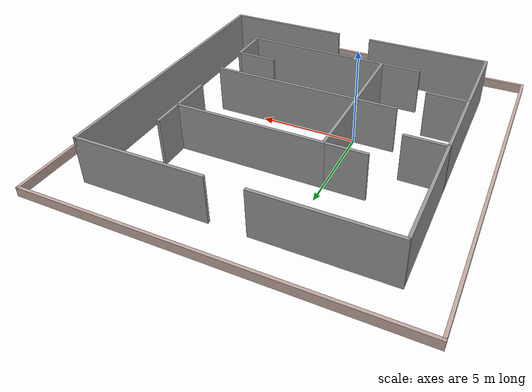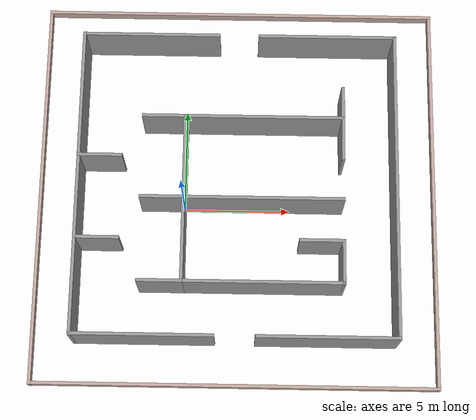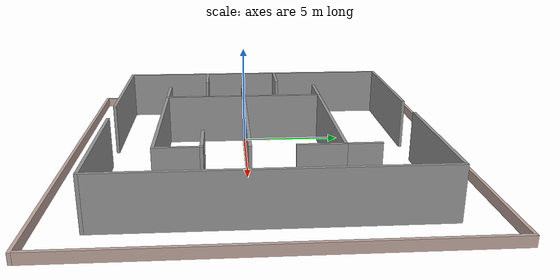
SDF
<?xml version='1.0'?>
<sdf version='1.6'>
  <model name='indoor_env_01'>
    <pose frame=''>2.5 0.825 0 0 -0 0</pose>
    <link name='Wall_0'>
      <collision name='Wall_0_Collision'>
        <geometry>
          <box>
            <size>7.65 0.15 2.5</size>
          </box>
        </geometry>
        <pose frame=''>0 0 1.25 0 -0 0</pose>
      </collision>
      <visual name='Wall_0_Visual'>
        <pose frame=''>0 0 1.25 0 -0 0</pose>
        <geometry>
          <box>
            <size>7.65 0.15 2.5</size>
          </box>
        </geometry>
        <material>
          <script>
            <uri>file://media/materials/scripts/gazebo.material</uri>
            <name>Gazebo/Grey</name>
          </script>
          <ambient>1 1 1 1</ambient>
        </material>
        <meta>
          <layer>0</layer>
        </meta>
      </visual>
      <pose frame=''>1.25 -0.825 0 0 -0 0</pose>
    </link>
    <link name='Wall_10'>
      <collision name='Wall_10_Collision'>
        <geometry>
          <box>
            <size>7.65 0.15 2.5</size>
          </box>
        </geometry>
        <pose frame=''>0 0 1.25 0 -0 0</pose>
      </collision>
      <visual name='Wall_10_Visual'>
        <pose frame=''>0 0 1.25 0 -0 0</pose>
        <geometry>
          <box>
            <size>7.65 0.15 2.5</size>
          </box>
        </geometry>
        <material>
          <script>
            <uri>file://media/materials/scripts/gazebo.material</uri>
            <name>Gazebo/Grey</name>
          </script>
          <ambient>1 1 1 1</ambient>
        </material>
        <meta>
          <layer>0</layer>
        </meta>
      </visual>
      <pose frame=''>1.25 3.175 0 0 -0 0</pose>
    </link>
    <link name='Wall_11'>
      <collision name='Wall_11_Collision'>
        <geometry>
          <box>
            <size>2.15 0.15 2.5</size>
          </box>
        </geometry>
        <pose frame=''>0 0 1.25 0 -0 0</pose>
      </collision>
      <visual name='Wall_11_Visual'>
        <pose frame=''>0 0 1.25 0 -0 0</pose>
        <geometry>
          <box>
            <size>2.15 0.15 2.5</size>
          </box>
        </geometry>
        <material>
          <script>
            <uri>file://media/materials/scripts/gazebo.material</uri>
            <name>Gazebo/Grey</name>
          </script>
          <ambient>1 1 1 1</ambient>
        </material>
        <meta>
          <layer>0</layer>
        </meta>
      </visual>
      <pose frame=''>5 2.175 0 0 -0 -1.5708</pose>
    </link>
    <link name='Wall_14'>
      <collision name='Wall_14_Collision'>
        <geometry>
          <box>
            <size>14.8 0.15 2.5</size>
          </box>
        </geometry>
        <pose frame=''>0 0 1.25 0 -0 0</pose>
      </collision>
      <visual name='Wall_14_Visual'>
        <pose frame=''>0 0 1.25 0 -0 0</pose>
        <geometry>
          <box>
            <size>14.8 0.15 2.5</size>
          </box>
        </geometry>
        <material>
          <script>
            <uri>file://media/materials/scripts/gazebo.material</uri>
            <name>Gazebo/Grey</name>
          </script>
          <ambient>1 1 1 1</ambient>
        </material>
        <meta>
          <layer>0</layer>
        </meta>
      </visual>
      <pose frame=''>7.5 0 0 0 -0 -1.5708</pose>
    </link>
    <link name='Wall_16'>
      <collision name='Wall_16_Collision'>
        <geometry>
          <box>
            <size>1.65 0.15 2.5</size>
          </box>
        </geometry>
        <pose frame=''>0 0 1.25 0 -0 0</pose>
      </collision>
      <visual name='Wall_16_Visual'>
        <pose frame=''>0 0 1.25 0 -0 0</pose>
        <geometry>
          <box>
            <size>1.65 0.15 2.5</size>
          </box>
        </geometry>
        <material>
          <script>
            <uri>file://media/materials/scripts/gazebo.material</uri>
            <name>Gazebo/Grey</name>
          </script>
          <ambient>1 1 1 1</ambient>
        </material>
        <meta>
          <layer>0</layer>
        </meta>
      </visual>
      <pose frame=''>5 3.925 0 0 -0 1.5708</pose>
    </link>
    <link name='Wall_18'>
      <collision name='Wall_18_Collision'>
        <geometry>
          <box>
            <size>6.65 0.15 2.5</size>
          </box>
        </geometry>
        <pose frame=''>0 0 1.25 0 -0 0</pose>
      </collision>
      <visual name='Wall_18_Visual'>
        <pose frame=''>0 0 1.25 0 -0 0</pose>
        <geometry>
          <box>
            <size>6.65 0.15 2.5</size>
          </box>
        </geometry>
        <material>
          <script>
            <uri>file://media/materials/scripts/gazebo.material</uri>
            <name>Gazebo/Grey</name>
          </script>
          <ambient>1 1 1 1</ambient>
        </material>
        <meta>
          <layer>0</layer>
        </meta>
      </visual>
      <pose frame=''>4.25 7.325 0 0 -0 0</pose>
    </link>
    <link name='Wall_2'>
      <collision name='Wall_2_Collision'>
        <geometry>
          <box>
            <size>4.15 0.15 2.5</size>
          </box>
        </geometry>
        <pose frame=''>0 0 1.25 0 -0 0</pose>
      </collision>
      <visual name='Wall_2_Visual'>
        <pose frame=''>0 0 1.25 0 -0 0</pose>
        <geometry>
          <box>
            <size>4.15 0.15 2.5</size>
          </box>
        </geometry>
        <material>
          <script>
            <uri>file://media/materials/scripts/gazebo.material</uri>
            <name>Gazebo/Grey</name>
          </script>
          <ambient>1 1 1 1</ambient>
        </material>
        <meta>
          <layer>0</layer>
        </meta>
      </visual>
      <pose frame=''>-2.5 -2.825 0 0 -0 -1.5708</pose>
    </link>
    <link name='Wall_29'>
      <collision name='Wall_29_Collision'>
        <geometry>
          <box>
            <size>6.65 0.15 2.5</size>
          </box>
        </geometry>
        <pose frame=''>0 0 1.25 0 -0 0</pose>
      </collision>
      <visual name='Wall_29_Visual'>
        <pose frame=''>0 0 1.25 0 -0 0</pose>
        <geometry>
          <box>
            <size>6.65 0.15 2.5</size>
          </box>
        </geometry>
        <material>
          <script>
            <uri>file://media/materials/scripts/gazebo.material</uri>
            <name>Gazebo/Grey</name>
          </script>
          <ambient>1 1 1 1</ambient>
        </material>
        <meta>
          <layer>0</layer>
        </meta>
      </visual>
      <pose frame=''>-4.25 -7.325 0 0 -0 3.14159</pose>
    </link>
    <link name='Wall_31'>
      <collision name='Wall_31_Collision'>
        <geometry>
          <box>
            <size>2.15 0.15 2.5</size>
          </box>
        </geometry>
        <pose frame=''>0 0 1.25 0 -0 0</pose>
      </collision>
      <visual name='Wall_31_Visual'>
        <pose frame=''>0 0 1.25 0 -0 0</pose>
        <geometry>
          <box>
            <size>2.15 0.15 2.5</size>
          </box>
        </geometry>
        <material>
          <script>
            <uri>file://media/materials/scripts/gazebo.material</uri>
            <name>Gazebo/Grey</name>
          </script>
          <ambient>1 1 1 1</ambient>
        </material>
        <meta>
          <layer>0</layer>
        </meta>
      </visual>
      <pose frame=''>-3.5 3.175 0 0 -0 3.14159</pose>
    </link>
    <link name='Wall_33'>
      <collision name='Wall_33_Collision'>
        <geometry>
          <box>
            <size>2.15 0.15 2.5</size>
          </box>
        </geometry>
        <pose frame=''>0 0 1.25 0 -0 0</pose>
      </collision>
      <visual name='Wall_33_Visual'>
        <pose frame=''>0 0 1.25 0 -0 0</pose>
        <geometry>
          <box>
            <size>2.15 0.15 2.5</size>
          </box>
        </geometry>
        <material>
          <script>
            <uri>file://media/materials/scripts/gazebo.material</uri>
            <name>Gazebo/Grey</name>
          </script>
          <ambient>1 1 1 1</ambient>
        </material>
        <meta>
          <layer>0</layer>
        </meta>
      </visual>
      <pose frame=''>-3.5 -4.825 0 0 -0 3.14159</pose>
    </link>
    <link name='Wall_35'>
      <collision name='Wall_35_Collision'>
        <geometry>
          <box>
            <size>2.15 0.15 2.5</size>
          </box>
        </geometry>
        <pose frame=''>0 0 1.25 0 -0 0</pose>
      </collision>
      <visual name='Wall_35_Visual'>
        <pose frame=''>0 0 1.25 0 -0 0</pose>
        <geometry>
          <box>
            <size>2.15 0.15 2.5</size>
          </box>
        </geometry>
        <material>
          <script>
            <uri>file://media/materials/scripts/gazebo.material</uri>
            <name>Gazebo/Grey</name>
          </script>
          <ambient>1 1 1 1</ambient>
        </material>
        <meta>
          <layer>0</layer>
        </meta>
      </visual>
      <pose frame=''>-3.5 -0.825 0 0 -0 3.14159</pose>
    </link>
    <link name='Wall_37'>
      <collision name='Wall_37_Collision'>
        <geometry>
          <box>
            <size>2.15 0.15 2.5</size>
          </box>
        </geometry>
        <pose frame=''>0 0 1.25 0 -0 0</pose>
      </collision>
      <visual name='Wall_37_Visual'>
        <pose frame=''>0 0 1.25 0 -0 0</pose>
        <geometry>
          <box>
            <size>2.15 0.15 2.5</size>
          </box>
        </geometry>
        <material>
          <script>
            <uri>file://media/materials/scripts/gazebo.material</uri>
            <name>Gazebo/Grey</name>
          </script>
          <ambient>1 1 1 1</ambient>
        </material>
        <meta>
          <layer>0</layer>
        </meta>
      </visual>
      <pose frame=''>-6.5 -2.825 0 0 -0 0</pose>
    </link>
    <link name='Wall_4'>
      <collision name='Wall_4_Collision'>
        <geometry>
          <box>
            <size>7.65 0.15 2.5</size>
          </box>
        </geometry>
        <pose frame=''>0 0 1.25 0 -0 0</pose>
      </collision>
      <visual name='Wall_4_Visual'>
        <pose frame=''>0 0 1.25 0 -0 0</pose>
        <geometry>
          <box>
            <size>7.65 0.15 2.5</size>
          </box>
        </geometry>
        <material>
          <script>
            <uri>file://media/materials/scripts/gazebo.material</uri>
            <name>Gazebo/Grey</name>
          </script>
          <ambient>1 1 1 1</ambient>
        </material>
        <meta>
          <layer>0</layer>
        </meta>
      </visual>
      <pose frame=''>1.25 -4.825 0 0 -0 0</pose>
    </link>
    <link name='Wall_43'>
      <collision name='Wall_43_Collision'>
        <geometry>
          <box>
            <size>2.15 0.15 2.5</size>
          </box>
        </geometry>
        <pose frame=''>0 0 1.25 0 -0 0</pose>
      </collision>
      <visual name='Wall_43_Visual'>
        <pose frame=''>0 0 1.25 0 -0 0</pose>
        <geometry>
          <box>
            <size>2.15 0.15 2.5</size>
          </box>
        </geometry>
        <material>
          <script>
            <uri>file://media/materials/scripts/gazebo.material</uri>
            <name>Gazebo/Grey</name>
          </script>
          <ambient>1 1 1 1</ambient>
        </material>
        <meta>
          <layer>0</layer>
        </meta>
      </visual>
      <pose frame=''>-6.5 1.175 0 0 -0 0</pose>
    </link>
    <link name='Wall_47'>
      <collision name='Wall_47_Collision'>
        <geometry>
          <box>
            <size>14.8 0.15 2.5</size>
          </box>
        </geometry>
        <pose frame=''>0 0 1.25 0 -0 0</pose>
      </collision>
      <visual name='Wall_47_Visual'>
        <pose frame=''>0 0 1.25 0 -0 0</pose>
        <geometry>
          <box>
            <size>14.8 0.15 2.5</size>
          </box>
        </geometry>
        <material>
          <script>
            <uri>file://media/materials/scripts/gazebo.material</uri>
            <name>Gazebo/Grey</name>
          </script>
          <ambient>1 1 1 1</ambient>
        </material>
        <meta>
          <layer>0</layer>
        </meta>
      </visual>
      <pose frame=''>-7.5 0 0 0 -0 -1.5708</pose>
    </link>
    <link name='Wall_5'>
      <collision name='Wall_5_Collision'>
        <geometry>
          <box>
            <size>2.15 0.15 2.5</size>
          </box>
        </geometry>
        <pose frame=''>0 0 1.25 0 -0 0</pose>
      </collision>
      <visual name='Wall_5_Visual'>
        <pose frame=''>0 0 1.25 0 -0 0</pose>
        <geometry>
          <box>
            <size>2.15 0.15 2.5</size>
          </box>
        </geometry>
        <material>
          <script>
            <uri>file://media/materials/scripts/gazebo.material</uri>
            <name>Gazebo/Grey</name>
          </script>
          <ambient>1 1 1 1</ambient>
        </material>
        <meta>
          <layer>0</layer>
        </meta>
      </visual>
      <pose frame=''>5 -3.825 0 0 -0 1.5708</pose>
    </link>
    <link name='Wall_51'>
      <collision name='Wall_51_Collision'>
        <geometry>
          <box>
            <size>6.65 0.15 2.5</size>
          </box>
        </geometry>
        <pose frame=''>0 0 1.25 0 -0 0</pose>
      </collision>
      <visual name='Wall_51_Visual'>
        <pose frame=''>0 0 1.25 0 -0 0</pose>
        <geometry>
          <box>
            <size>6.65 0.15 2.5</size>
          </box>
        </geometry>
        <material>
          <script>
            <uri>file://media/materials/scripts/gazebo.material</uri>
            <name>Gazebo/Grey</name>
          </script>
          <ambient>1 1 1 1</ambient>
        </material>
        <meta>
          <layer>0</layer>
        </meta>
      </visual>
      <pose frame=''>4.25 -7.325 0 0 -0 3.14159</pose>
    </link>
    <link name='Wall_55'>
      <collision name='Wall_55_Collision'>
        <geometry>
          <box>
            <size>6.65 0.15 2.5</size>
          </box>
        </geometry>
        <pose frame=''>0 0 1.25 0 -0 0</pose>
      </collision>
      <visual name='Wall_55_Visual'>
        <pose frame=''>0 0 1.25 0 -0 0</pose>
        <geometry>
          <box>
            <size>6.65 0.15 2.5</size>
          </box>
        </geometry>
        <material>
          <script>
            <uri>file://media/materials/scripts/gazebo.material</uri>
            <name>Gazebo/Grey</name>
          </script>
          <ambient>1 1 1 1</ambient>
        </material>
        <meta>
          <layer>0</layer>
        </meta>
      </visual>
      <pose frame=''>-4.25 7.325 0 0 -0 0</pose>
    </link>
    <link name='Wall_59'>
      <collision name='Wall_59_Collision'>
        <geometry>
          <box>
            <size>18.8 0.15 0.5</size>
          </box>
        </geometry>
        <pose frame=''>0 0 0.25 0 -0 0</pose>
      </collision>
      <visual name='Wall_59_Visual'>
        <pose frame=''>0 0 0.25 0 -0 0</pose>
        <geometry>
          <box>
            <size>18.8 0.15 0.5</size>
          </box>
        </geometry>
        <material>
          <script>
            <uri>file://media/materials/scripts/gazebo.material</uri>
            <name>Gazebo/Grey</name>
          </script>
          <ambient>0.760784 0.662745 0.627451 1</ambient>
        </material>
        <meta>
          <layer>0</layer>
        </meta>
      </visual>
      <pose frame=''>-9.5 0 0 0 -0 1.5708</pose>
    </link>
    <link name='Wall_63'>
      <collision name='Wall_63_Collision'>
        <geometry>
          <box>
            <size>19.15 0.15 0.5</size>
          </box>
        </geometry>
        <pose frame=''>0 0 0.25 0 -0 0</pose>
      </collision>
      <visual name='Wall_63_Visual'>
        <pose frame=''>0 0 0.25 0 -0 0</pose>
        <geometry>
          <box>
            <size>19.15 0.15 0.5</size>
          </box>
        </geometry>
        <material>
          <script>
            <uri>file://media/materials/scripts/gazebo.material</uri>
            <name>Gazebo/Grey</name>
          </script>
          <ambient>0.760784 0.662745 0.627451 1</ambient>
        </material>
        <meta>
          <layer>0</layer>
        </meta>
      </visual>
      <pose frame=''>0 -9.325 0 0 -0 0</pose>
    </link>
    <link name='Wall_69'>
      <collision name='Wall_69_Collision'>
        <geometry>
          <box>
            <size>19.15 0.15 0.5</size>
          </box>
        </geometry>
        <pose frame=''>0 0 0.25 0 -0 0</pose>
      </collision>
      <visual name='Wall_69_Visual'>
        <pose frame=''>0 0 0.25 0 -0 0</pose>
        <geometry>
          <box>
            <size>19.15 0.15 0.5</size>
          </box>
        </geometry>
        <material>
          <script>
            <uri>file://media/materials/scripts/gazebo.material</uri>
            <name>Gazebo/Grey</name>
          </script>
          <ambient>0.760784 0.662745 0.627451 1</ambient>
        </material>
        <meta>
          <layer>0</layer>
        </meta>
      </visual>
      <pose frame=''>0 9.325 0 0 -0 0</pose>
    </link>
    <link name='Wall_7'>
      <collision name='Wall_7_Collision'>
        <geometry>
          <box>
            <size>2.15 0.15 2.5</size>
          </box>
        </geometry>
        <pose frame=''>0 0 1.25 0 -0 0</pose>
      </collision>
      <visual name='Wall_7_Visual'>
        <pose frame=''>0 0 1.25 0 -0 0</pose>
        <geometry>
          <box>
            <size>2.15 0.15 2.5</size>
          </box>
        </geometry>
        <material>
          <script>
            <uri>file://media/materials/scripts/gazebo.material</uri>
            <name>Gazebo/Grey</name>
          </script>
          <ambient>1 1 1 1</ambient>
        </material>
        <meta>
          <layer>0</layer>
        </meta>
      </visual>
      <pose frame=''>4 -2.825 0 0 -0 3.14159</pose>
    </link>
    <link name='Wall_70'>
      <collision name='Wall_70_Collision'>
        <geometry>
          <box>
            <size>18.8 0.15 0.5</size>
          </box>
        </geometry>
        <pose frame=''>0 0 0.25 0 -0 0</pose>
      </collision>
      <visual name='Wall_70_Visual'>
        <pose frame=''>0 0 0.25 0 -0 0</pose>
        <geometry>
          <box>
            <size>18.8 0.15 0.5</size>
          </box>
        </geometry>
        <material>
          <script>
            <uri>file://media/materials/scripts/gazebo.material</uri>
            <name>Gazebo/Grey</name>
          </script>
          <ambient>0.760784 0.662745 0.627451 1</ambient>
        </material>
        <meta>
          <layer>0</layer>
        </meta>
      </visual>
      <pose frame=''>9.5 0 0 0 -0 -1.5708</pose>
    </link>
    <link name='Wall_9'>
      <collision name='Wall_9_Collision'>
        <geometry>
          <box>
            <size>4.15 0.15 2.5</size>
          </box>
        </geometry>
        <pose frame=''>0 0 1.25 0 -0 0</pose>
      </collision>
      <visual name='Wall_9_Visual'>
        <pose frame=''>0 0 1.25 0 -0 0</pose>
        <geometry>
          <box>
            <size>4.15 0.15 2.5</size>
          </box>
        </geometry>
        <material>
          <script>
            <uri>file://media/materials/scripts/gazebo.material</uri>
            <name>Gazebo/Grey</name>
          </script>
          <ambient>1 1 1 1</ambient>
        </material>
        <meta>
          <layer>0</layer>
        </meta>
      </visual>
      <pose frame=''>-2.5 1.175 0 0 -0 1.5708</pose>
    </link>
    <static>1</static>
  </model>
</sdf>
